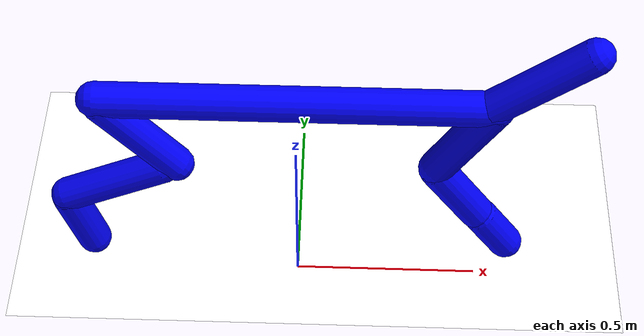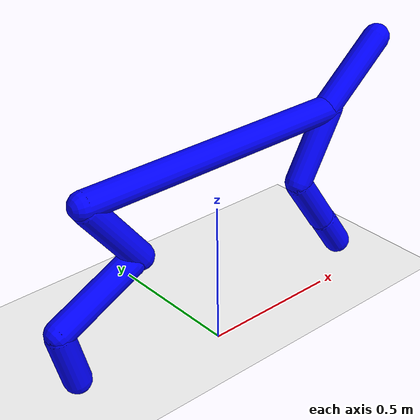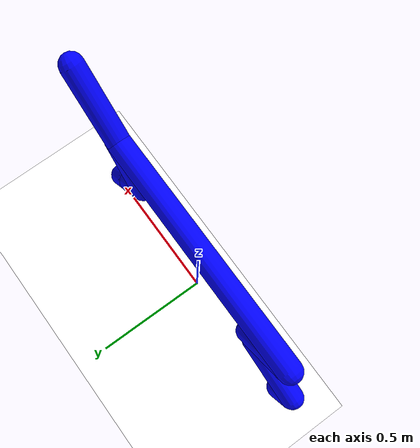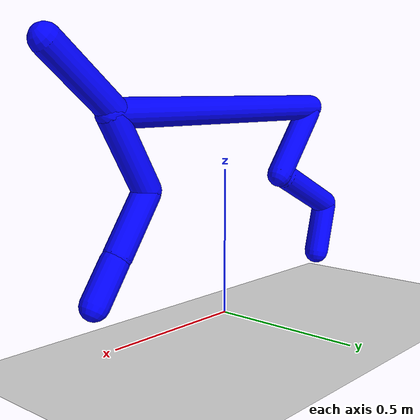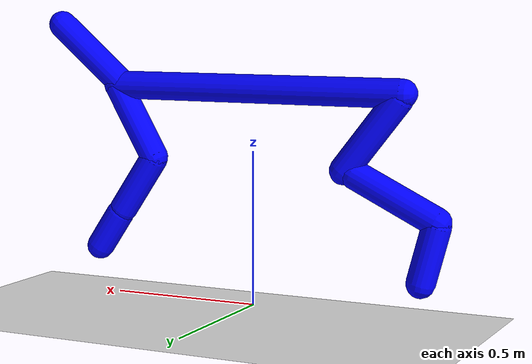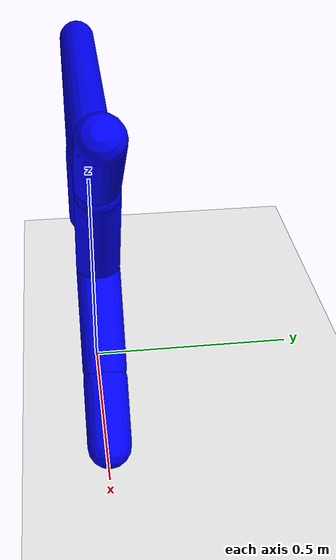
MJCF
<mujoco model="cheetah">
  <include file="common/materials.xml"/>

  <compiler settotalmass="14"/>

  <default>
    <default class="cheetah">
      <joint limited="true" damping=".01" armature=".1" stiffness="8" type="hinge" axis="0 1 0"/>
      <geom contype="1" conaffinity="1" condim="3" friction=".4 .1 .1" material="self"/>
    </default>
    <default class="free">
      <joint limited="false" damping="0" armature="0" stiffness="0"/>
    </default>
    <motor ctrllimited="true" ctrlrange="-1 1"/>
  </default>

  <asset>
    <texture type="skybox" builtin="gradient" rgb1="1 1 1" rgb2="1 1 1" width="800" height="800"/>
    <texture type="2d" name="groundplane" builtin="checker" mark="edge" rgb1="1 1 1" rgb2="1 1 1"
      markrgb="0 0 0" width="300" height="300"/>
    <material name="groundplane" texture="groundplane" texuniform="true" texrepeat="5 5" reflectance="0"/>
  </asset>

  <visual>
    <headlight diffuse=".8 .8 .8" ambient=".2 .2 .2" specular="1 1 1"/>
    <rgba force="1 0 0 1"/>
    <global azimuth="140" elevation="-20" offwidth="2560" offheight="2560"/>
    <map force="0.01"/>
    <scale forcewidth="0.3" contactwidth="0.5" contactheight="0.2"/>
    <quality shadowsize="8192"/>
  </visual>

  <statistic center="0 0 .7" extent="2"/>

  <option timestep="0.01" iterations="4" ls_iterations="8">
    <flag eulerdamp="disable"/>
  </option>

  <custom>
    <numeric data="6" name="max_contact_points"/>
    <numeric data="4" name="max_geom_pairs"/>
  </custom>

  <worldbody>
    <geom name="ground" type="plane" conaffinity="1" pos="98 0 0" size="100 .8 .5" material="groundplane"/>
    <camera name="side_fixed" pos="2.0 -4.5 2.5" euler="70 0 0"/>
    <light name="light" pos="0 0 4" dir="0 0 -1" specular=".2 .2 .2" diffuse=".5 .5 .5" exponent="0.5" ambient="0.2 0.2 0.2" mode="trackcom"/>
    <body name="torso" pos="0 0 .7" childclass="cheetah">

      <camera name="track" pos="0 -3 0" quat="0.707 0.707 0 0" mode="trackcom"/>
      <camera name="back" pos="-1.8 -1.3 0.8" xyaxes="0.45 -0.9 0 0.3 0.15 0.94" mode="trackcom"/>
      <joint name="rootx" type="slide" axis="1 0 0" class="free"/>
      <joint name="rootz" type="slide" axis="0 0 1" class="free"/>
      <joint name="rooty" type="hinge" axis="0 1 0" class="free"/>
      <geom name="torso" type="capsule" fromto="-.5 0 0 .5 0 0" size="0.046"/>
      <geom name="head" type="capsule" pos=".6 0 .1" euler="0 50 0" size="0.046 .15"/>
      <body name="bthigh" pos="-.5 0 0">
        <joint name="bthigh" range="-30 60" stiffness="240" damping="6"/>
        <geom name="bthigh" type="capsule" pos=".1 0 -.13" euler="0 -218 0" size="0.046 .145"/>
        <body name="bshin" pos=".16 0 -.25">
          <joint name="bshin" range="-50 50" stiffness="180" damping="4.5"/>
          <geom name="bshin" type="capsule" pos="-.14 0 -.07" euler="0 -116 0" size="0.046 .15"/>
          <body name="bfoot" pos="-.28 0 -.14">
            <joint name="bfoot" range="-230 50" stiffness="120" damping="3"/>
            <geom name="bfoot" type="capsule" pos=".03 0 -.097" euler="0 -15 0" size="0.046 .094"/>
          </body>
        </body>
      </body>
      <body name="fthigh" pos=".5 0 0">
        <joint name="fthigh" range="-57 .40" stiffness="180" damping="4.5"/>
        <geom name="fthigh" type="capsule" pos="-.07 0 -.12" euler="0 30 0" size="0.046 .133"/>
        <body name="fshin" pos="-.14 0 -.24">
          <joint name="fshin" range="-70 50" stiffness="120" damping="3"/>
          <geom name="fshin" type="capsule" pos=".065 0 -.09" euler="0 -34 0" size="0.046 .106"/>
          <body name="ffoot" pos=".13 0 -.18">
            <joint name="ffoot" range="-28 28" stiffness="60" damping="1.5"/>
            <geom name="ffoot" type="capsule" pos=".045 0 -.07" euler="0 -34 0" size="0.046 .07"/>
          </body>
        </body>
      </body>
    </body>
  </worldbody>

  <sensor>
    <subtreelinvel name="torso_subtreelinvel" body="torso"/>
  </sensor>

  <actuator>
    <motor name="bthigh" joint="bthigh" gear="120" />
    <motor name="bshin" joint="bshin" gear="90" />
    <motor name="bfoot" joint="bfoot" gear="60" />
    <motor name="fthigh" joint="fthigh" gear="90" />
    <motor name="fshin" joint="fshin" gear="60" />
    <motor name="ffoot" joint="ffoot" gear="30" />
  </actuator>
</mujoco>

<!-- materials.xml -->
<!--
Common textures, colors and materials to be used throughout this suite. Some
materials such as xxx_highlight are activated on occurence of certain events,
for example receiving a positive reward.
-->
<mujoco>
  <asset>
    <texture name="grid" type="2d" builtin="checker" rgb1=".1 .2 .3" rgb2=".2 .3 .4" width="300" height="300" mark="edge" markrgb=".2 .3 .4"/>
    <material name="grid" texture="grid" texrepeat="1 1" texuniform="true" reflectance=".2"/>
    <material name="self" rgba="0 0 1 1"/>
    <material name="self_default" rgba=".7 .5 .3 1"/>
    <material name="self_highlight" rgba="0 .5 .3 1"/>
    <material name="effector" rgba=".7 .4 .2 1"/>
    <material name="effector_default" rgba=".7 .4 .2 1"/>
    <material name="effector_highlight" rgba="0 .5 .3 1"/>
    <material name="decoration" rgba=".3 .5 .7 1"/>
    <material name="eye" rgba="0 .2 1 1"/>
    <material name="target" rgba=".6 .3 .3 1"/>
    <material name="target_default" rgba=".6 .3 .3 1"/>
    <material name="target_highlight" rgba=".6 .3 .3 .4"/>
    <material name="site" rgba=".5 .5 .5 .3"/>
  </asset>
</mujoco>
